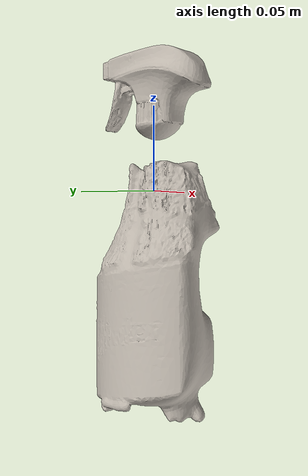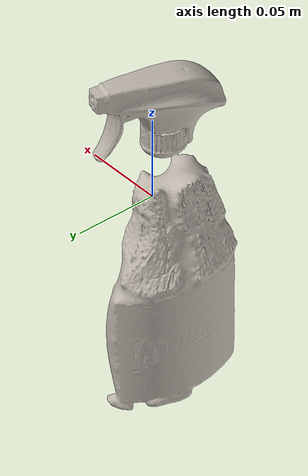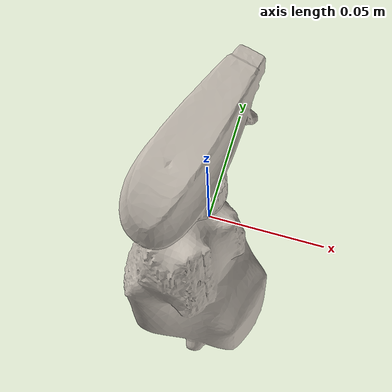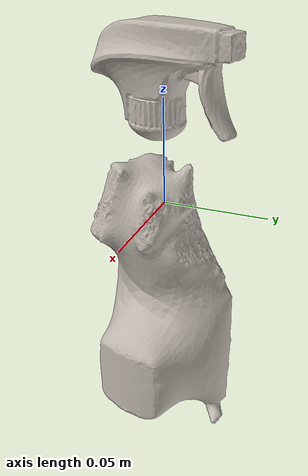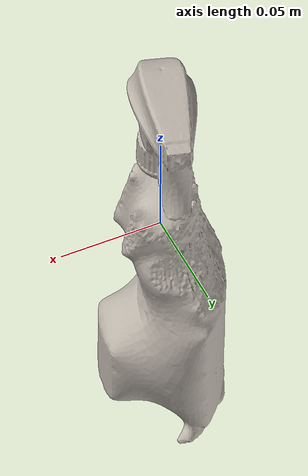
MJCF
<mujoco model="bread">
  <asset>
    <mesh file="nontextured.stl" name="obj_mesh" scale="0.8 0.8 0.8"/>
    <texture file="../../../../../textures/bread.png" type="2d" name="tex-bread" />
    <material name="bread" reflectance="0.7" texrepeat="15 15" texture="tex-bread" texuniform="true"/>
  </asset>
  <worldbody>
    <body>
      <body name="collision">
        <geom pos="-0.0182865 -0.011928000000000001 -0.1342495" mesh="obj_mesh" type="mesh" solimp="0.998 0.998 0.001" solref="0.001 1" density="50" friction="0.95 0.3 0.1"  material="bread" group="1" condim="4"/>
      </body>
      <body name="visual">
        <geom pos="-0.0182865 -0.011928000000000001 -0.1342495" mesh="obj_mesh" type="mesh" material="bread"  conaffinity="0" contype="0"  group="0" mass="0.0001"/>
        <geom pos="-0.0182865 -0.011928000000000001 -0.1342495" mesh="obj_mesh" type="mesh" material="bread"  conaffinity="0" contype="0"  group="1" mass="0.0001"/>
      </body>
      <site rgba="0 0 0 0" size="0.005" pos="0 0 -0.1349005" name="bottom_site"/>
      <site rgba="0 0 0 0" size="0.005" pos="0 0 0.1349005" name="top_site"/>
      <site rgba="0 0 0 0" size="0.005" pos="0.0413635 0.047714 0.1349005" name="horizontal_radius_site"/>
    </body>
  </worldbody>
</mujoco>
